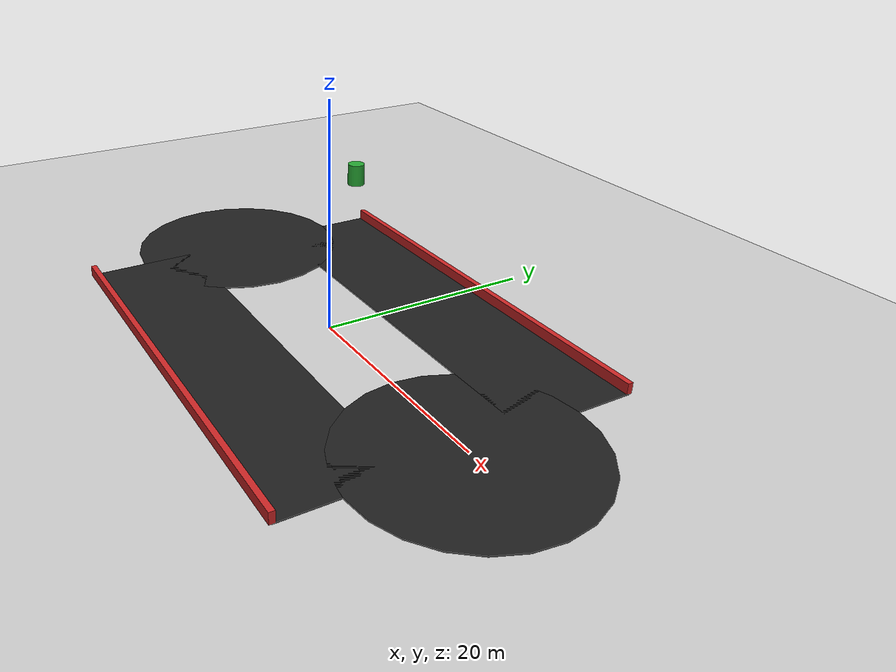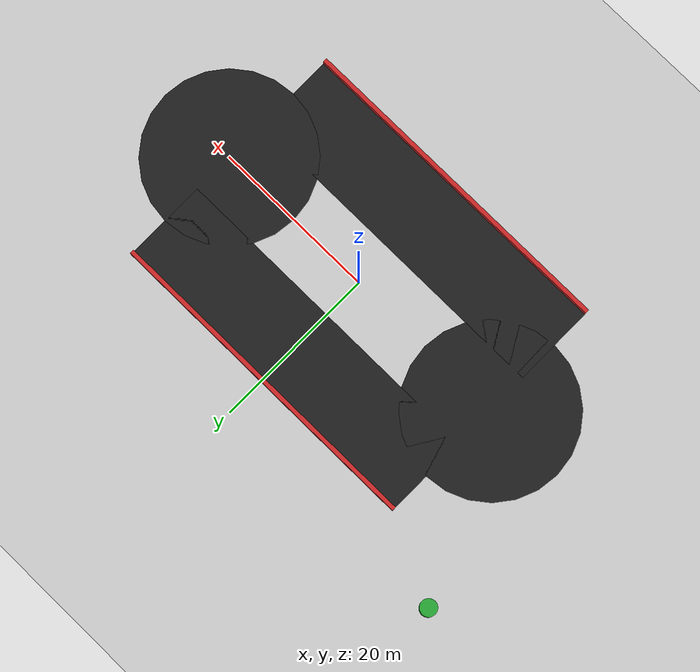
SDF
<?xml version="1.0" ?>
<sdf version="1.7">
  <world name="race_track_world">
    <!-- Physics Settings -->
    <physics type="ode">
      <gravity>0 0 -9.81</gravity>
      <ode>
        <solver>
          <type>quick</type>
          <iters>50</iters>
          <sor>1.3</sor>
        </solver>
        <constraints>
          <cfm>0.00001</cfm>
          <erp>0.2</erp>
        </constraints>
      </ode>
      <max_step_size>0.001</max_step_size>
      <real_time_factor>1.0</real_time_factor>
      <real_time_update_rate>1000</real_time_update_rate>
    </physics>

    <plugin name='gz::sim::systems::Sensors' filename='gz-sim-sensors-system'>
      <render_engine>ogre2</render_engine>
    </plugin>

    <!-- Lighting: Sun -->
    <light type="directional" name="sun">
      <cast_shadows>true</cast_shadows>
      <pose>0 0 10 0 0 0</pose>
      <diffuse>0.8 0.8 0.8 1</diffuse>
      <specular>0.2 0.2 0.2 1</specular>
      <attenuation>
        <range>1000</range>
        <constant>0.9</constant>
        <linear>0.01</linear>
        <quadratic>0.001</quadratic>
      </attenuation>
      <direction>-0.5 0.5 -1</direction>
    </light>

    <!-- Ground Plane -->
    <model name="ground_plane">
      <static>true</static>
      <link name="ground_link">
        <collision name="collision">
          <geometry>
            <plane>
              <normal>0 0 1</normal>
              <size>100 100</size>
            </plane>
          </geometry>
          <surface>
            <friction>
              <ode>
                <mu>0.6</mu>
                <mu2>0.6</mu2>
              </ode>
            </friction>
          </surface>
        </collision>
        <visual name="visual">
          <geometry>
            <plane>
              <normal>0 0 1</normal>
              <size>100 100</size>
            </plane>
          </geometry>
          <material>
            <script>
              <uri>file://media/materials/scripts/gazebo.material</uri>
              <name>Gazebo/Grey</name>
            </script>
          </material>
        </visual>
      </link>
    </model>

    <!-- Race Track (Oval Shape) -->
    <model name="race_track">
      <static>true</static>
      <link name="track_link">
        <!-- Track Surface (Box approximations for an oval) -->
        <!-- Straight sections -->
        <visual name="straight1_visual">
          <pose>0 10 0 0 0 0</pose>
          <geometry>
            <box>
              <size>40 10 0.1</size>
            </box>
          </geometry>
          <material>
            <script>
              <uri>file://media/materials/scripts/gazebo.material</uri>
              <name>Gazebo/Black</name> <!-- Asphalt-like color -->
            </script>
          </material>
        </visual>
        <collision name="straight1_collision">
          <pose>0 10 0 0 0 0</pose>
          <geometry>
            <box>
              <size>40 10 0.1</size>
            </box>
          </geometry>
          <surface>
            <friction>
              <ode>
                <mu>0.8</mu>
                <mu2>0.8</mu2>
              </ode>
            </friction>
          </surface>
        </collision>

        <visual name="straight2_visual">
          <pose>0 -10 0 0 0 0</pose>
          <geometry>
            <box>
              <size>40 10 0.1</size>
            </box>
          </geometry>
          <material>
            <script>
              <uri>file://media/materials/scripts/gazebo.material</uri>
              <name>Gazebo/Black</name>
            </script>
          </material>
        </visual>
        <collision name="straight2_collision">
          <pose>0 -10 0 0 0 0</pose>
          <geometry>
            <box>
              <size>40 10 0.1</size>
            </box>
          </geometry>
          <surface>
            <friction>
              <ode>
                <mu>0.8</mu>
                <mu2>0.8</mu2>
              </ode>
            </friction>
          </surface>
        </collision>

        <!-- Curved sections (approximated with cylinders) -->
        <visual name="curve1_visual">
          <pose>20 0 0 0 0 0</pose>
          <geometry>
            <cylinder>
              <radius>10</radius>
              <length>0.1</length>
            </cylinder>
          </geometry>
          <material>
            <script>
              <uri>file://media/materials/scripts/gazebo.material</uri>
              <name>Gazebo/Black</name>
            </script>
          </material>
        </visual>
        <collision name="curve1_collision">
          <pose>20 0 0 0 0 0</pose>
          <geometry>
            <cylinder>
              <radius>10</radius>
              <length>0.1</length>
            </cylinder>
          </geometry>
          <surface>
            <friction>
              <ode>
                <mu>0.8</mu>
                <mu2>0.8</mu2>
              </ode>
            </friction>
          </surface>
        </collision>

        <visual name="curve2_visual">
          <pose>-20 0 0 0 0 0</pose>
          <geometry>
            <cylinder>
              <radius>10</radius>
              <length>0.1</length>
            </cylinder>
          </geometry>
          <material>
            <script>
              <uri>file://media/materials/scripts/gazebo.material</uri>
              <name>Gazebo/Black</name>
            </script>
          </material>
        </visual>
        <collision name="curve2_collision">
          <pose>-20 0 0 0 0 0</pose>
          <geometry>
            <cylinder>
              <radius>10</radius>
              <length>0.1</length>
            </cylinder>
          </geometry>
          <surface>
            <friction>
              <ode>
                <mu>0.8</mu>
                <mu2>0.8</mu2>
              </ode>
            </friction>
          </surface>
        </collision>
      </link>
    </model>

    <!-- Barriers (Simple boxes along the track edges) -->
    <model name="barriers">
      <static>true</static>
      <link name="barrier_link">
        <!-- Outer straight barriers -->
        <visual name="barrier1_visual">
          <pose>0 15 0.5 0 0 0</pose>
          <geometry>
            <box>
              <size>40 0.5 1</size>
            </box>
          </geometry>
          <material>
            <script>
              <uri>file://media/materials/scripts/gazebo.material</uri>
              <name>Gazebo/Red</name>
            </script>
          </material>
        </visual>
        <collision name="barrier1_collision">
          <pose>0 15 0.5 0 0 0</pose>
          <geometry>
            <box>
              <size>40 0.5 1</size>
            </box>
          </geometry>
        </collision>

        <visual name="barrier2_visual">
          <pose>0 -15 0.5 0 0 0</pose>
          <geometry>
            <box>
              <size>40 0.5 1</size>
            </box>
          </geometry>
          <material>
            <script>
              <uri>file://media/materials/scripts/gazebo.material</uri>
              <name>Gazebo/Red</name>
            </script>
          </material>
        </visual>
        <collision name="barrier2_collision">
          <pose>0 -15 0.5 0 0 0</pose>
          <geometry>
            <box>
              <size>40 0.5 1</size>
            </box>
          </geometry>
        </collision>
      </link>
    </model>

    <!-- Optional Scenery: Tree -->
    <model name="tree">
      <pose>-30 20 0 0 0 0</pose>
      <link name="tree_link">
        <visual name="tree_visual">
          <geometry>
            <cylinder>
              <radius>1</radius>
              <length>5</length>
            </cylinder>
          </geometry>
          <material>
            <script>
              <uri>file://media/materials/scripts/gazebo.material</uri>
              <name>Gazebo/Green</name>
            </script>
          </material>
        </visual>
        <collision name="tree_collision">
          <geometry>
            <cylinder>
              <radius>1</radius>
              <length>5</length>
            </cylinder>
          </geometry>
        </collision>
      </link>
    </model>

    <!-- GUI Settings -->
  </world>
</sdf>
